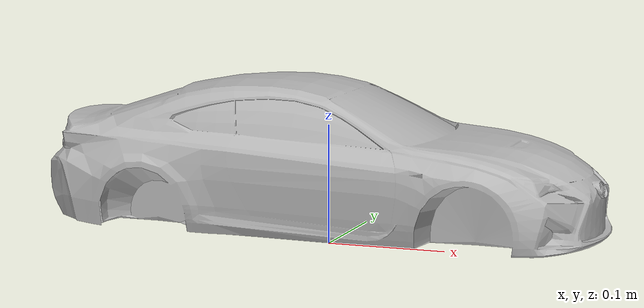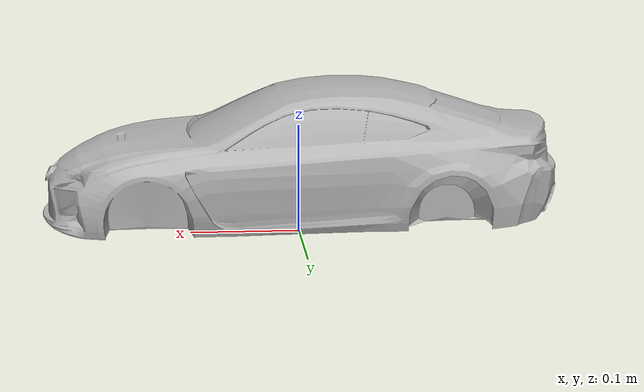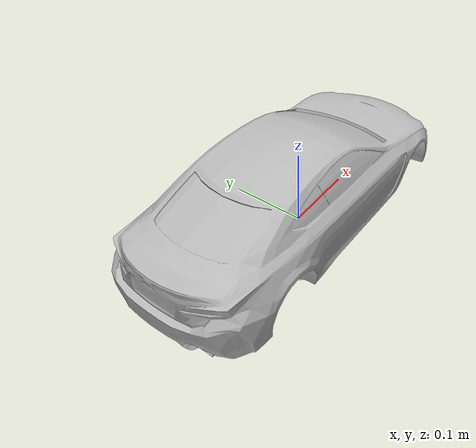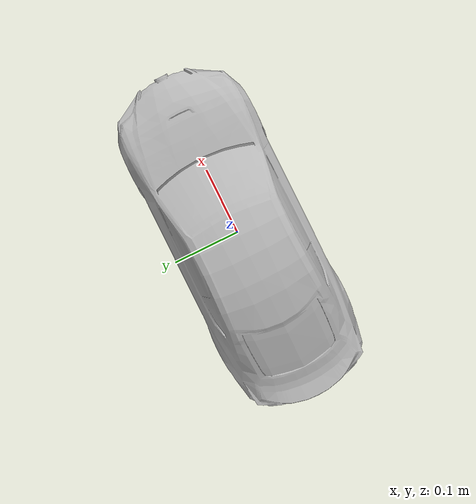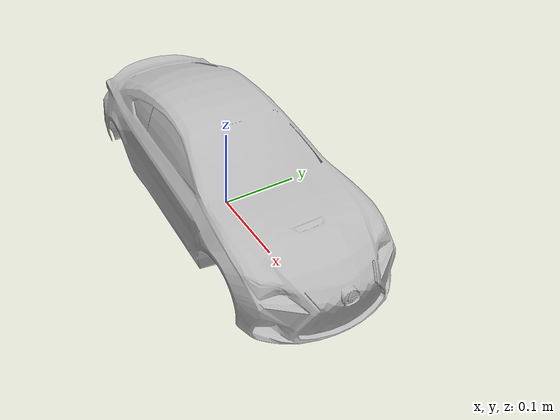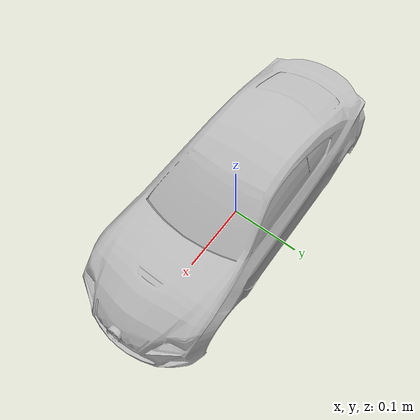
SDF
<?xml version='1.0'?>
<sdf version='1.6'>
  <model name='body'>
    <link name='link'>
      <inertial>
        <mass>1</mass>
        <inertia>
          <ixx>0.166667</ixx>
          <ixy>0</ixy>
          <ixz>0</ixz>
          <iyy>0.166667</iyy>
          <iyz>0</iyz>
          <izz>0.166667</izz>
        </inertia>
      </inertial>
      <pose frame=''>0 -0 0 0 -0 0</pose>
      <visual name='visual'>
        <pose frame=''>0 0 0 0 -0 0</pose>
        <geometry>
          <mesh>
            <uri>model://car_body/meshes/CarBody.dae</uri>
            <scale>1 1 1</scale>
          </mesh>
        </geometry>
        <material>
            <script>
              <uri>model://car_body/materials/scripts</uri>
              <uri>model://car_body/materials/textures</uri>
              <name>CarBody/Image</name>
            </script>
        </material>
        <transparency>0</transparency>
        <cast_shadows>1</cast_shadows>
      </visual>
    </link>
    <static>0</static>
    <allow_auto_disable>1</allow_auto_disable>
  </model>
</sdf>
